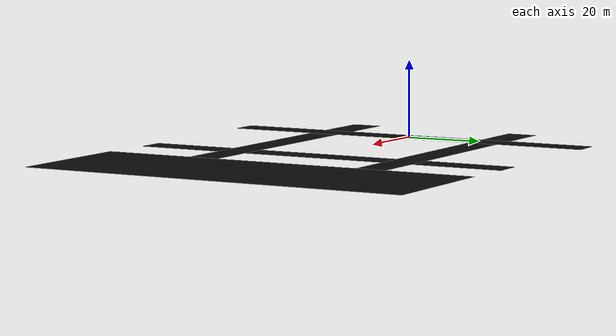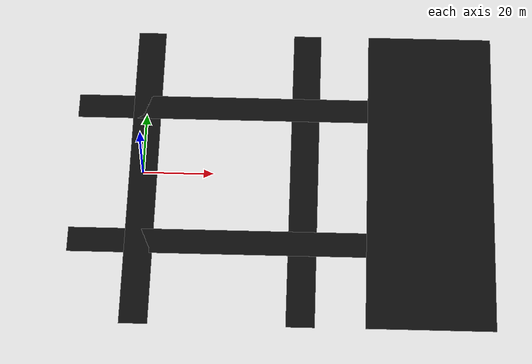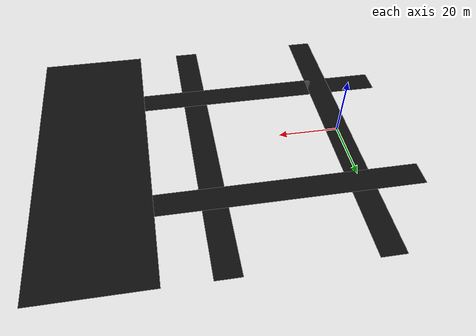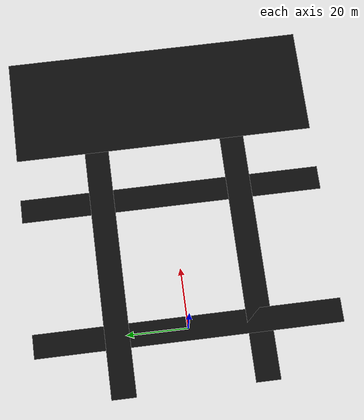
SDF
<sdf version="1.7">
  <model name="streets">
      <static>true</static>

      <link name="north_street">
        <visual name="visual">
          <pose>46 0 0 0 0 0</pose>
            <geometry>
              <plane>
                <normal>0 0 1</normal>
                <size>8 100</size>
              </plane>
            </geometry>
          <material>
            <ambient>0.05 0.05 0.05 1</ambient>
            <diffuse>0.05 0.05 0.05 1</diffuse>
            <specular>0.1 0.1 0.1 1</specular>
          </material>
        </visual>
      </link>

      <link name="south_street">
        <visual name="visual">
          <pose>0 0 0 0 0 0</pose>
            <geometry>
              <plane>
                <normal>0 0 1</normal>
                <size>8 100</size>
              </plane>
            </geometry>
          <material>
            <ambient>0.05 0.05 0.05 1</ambient>
            <diffuse>0.05 0.05 0.05 1</diffuse>
            <specular>0.1 0.1 0.1 1</specular>
          </material>
        </visual>
      </link>

      <link name="west_street">
        <visual name="visual">
          <pose>40 23 0 0 0 0</pose>
            <geometry>
              <plane>
                <normal>0 0 1</normal>
                <size>120 8</size>
              </plane>
            </geometry>
          <material>
            <ambient>0.05 0.05 0.05 1</ambient>
            <diffuse>0.05 0.05 0.05 1</diffuse>
            <specular>0.1 0.1 0.1 1</specular>
          </material>
        </visual>
      </link>

      <link name="east_street">
        <visual name="visual">
          <pose>40 -23 0 0 0 0</pose>
            <geometry>
              <plane>
                <normal>0 0 1</normal>
                <size>120 8</size>
              </plane>
            </geometry>
          <material>
            <ambient>0.05 0.05 0.05 1</ambient>
            <diffuse>0.05 0.05 0.05 1</diffuse>
            <specular>0.1 0.1 0.1 1</specular>
          </material>
        </visual>
      </link>

      <link name="parking">
        <visual name="visual">
          <pose>82 0 0 0 0 0</pose>
            <geometry>
              <plane>
                <normal>0 0 1</normal>
                <size>36 100</size>
              </plane>
            </geometry>
          <material>
            <ambient>0.05 0.05 0.05 1</ambient>
            <diffuse>0.05 0.05 0.05 1</diffuse>
            <specular>0.1 0.1 0.1 1</specular>
          </material>
        </visual>
      </link>

  </model>
</sdf>
